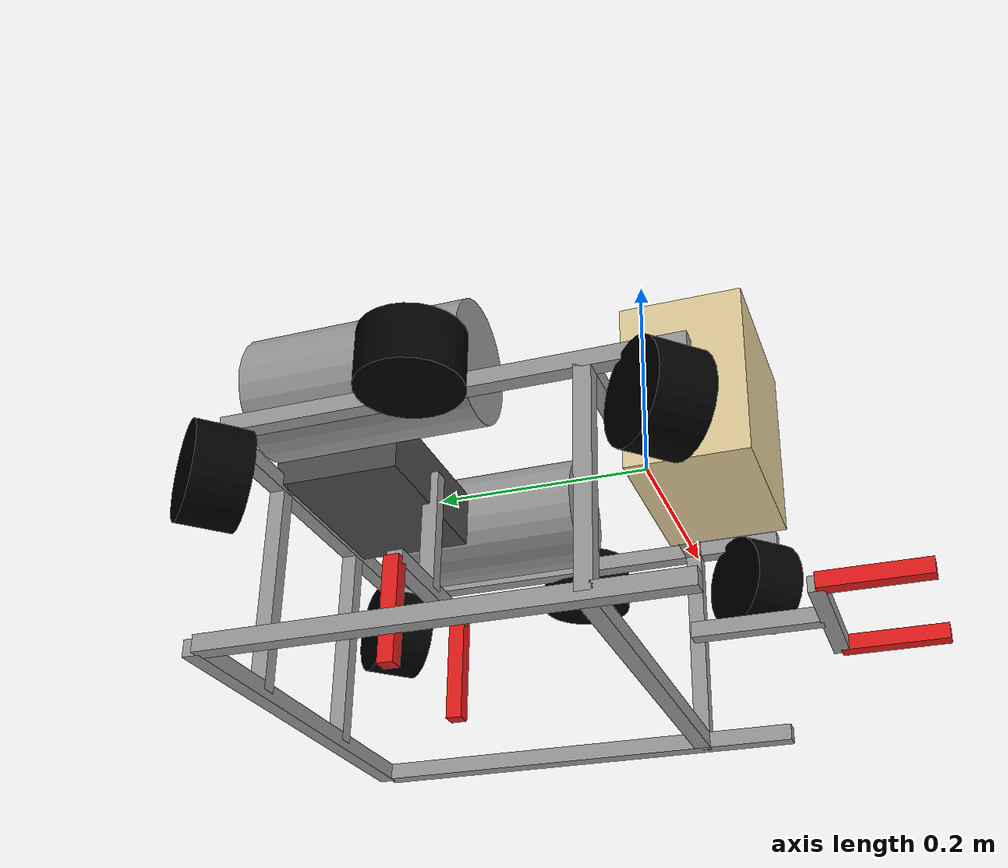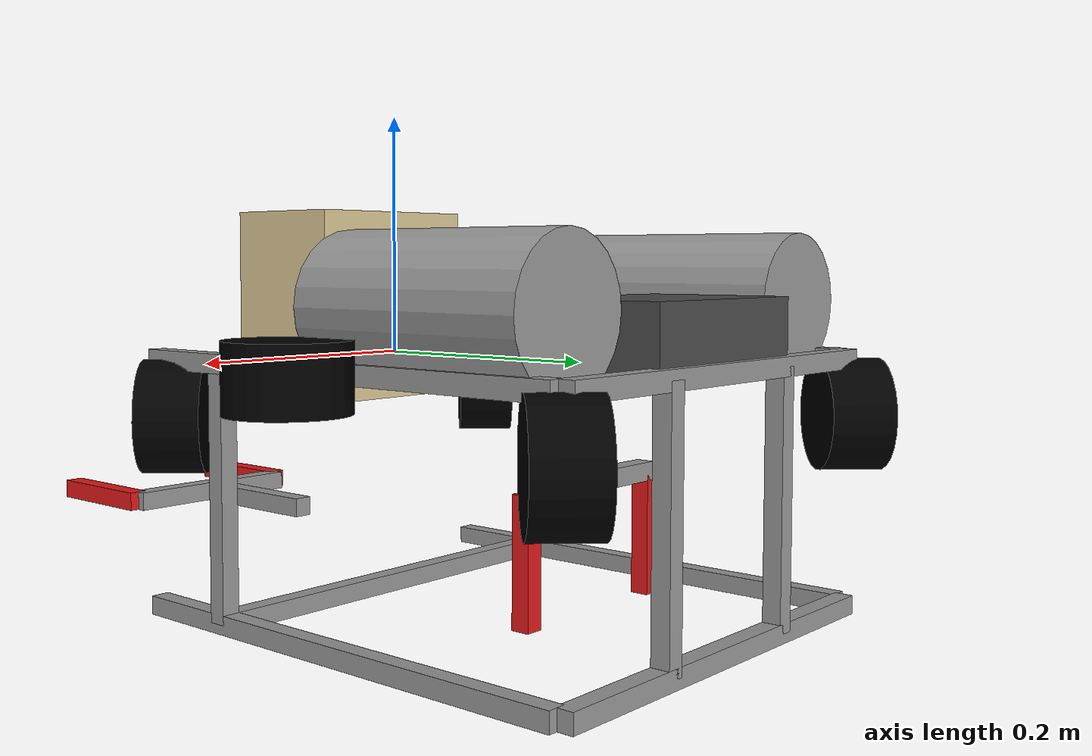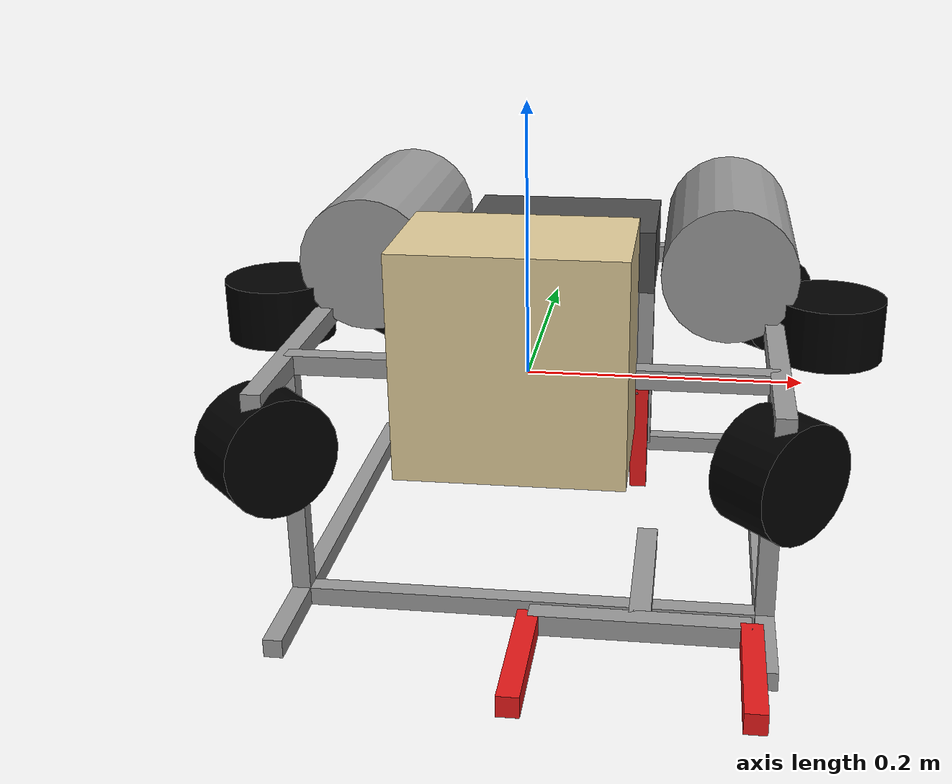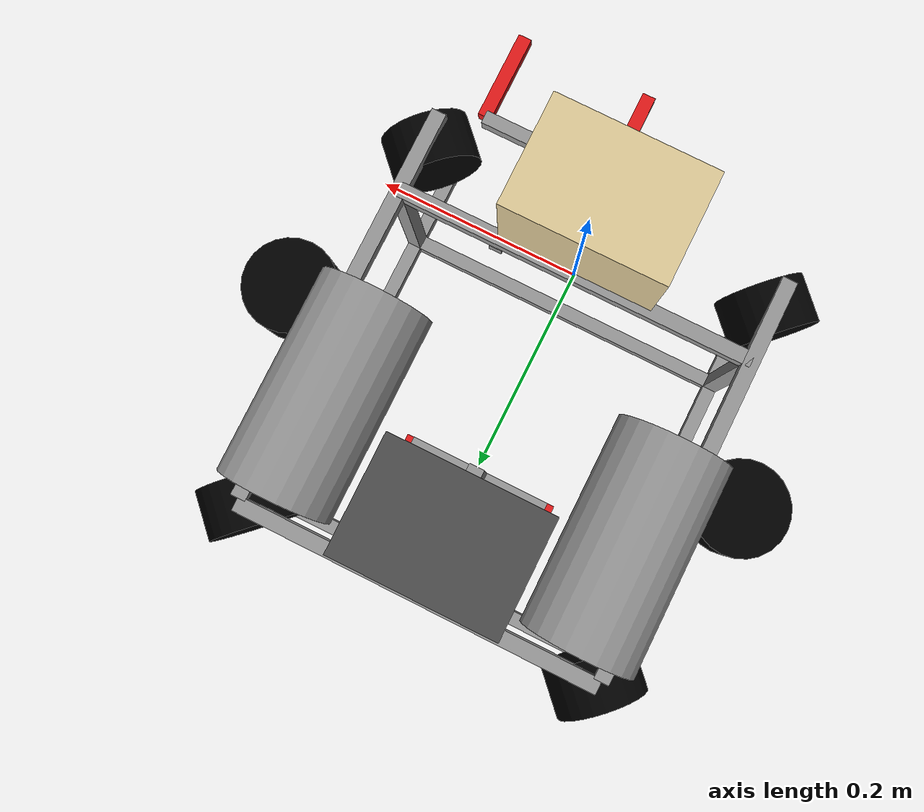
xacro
<?xml version="1.0"?>
<robot xmlns:xacro="http://www.ros.org/wiki/xacro" name="rov">

<!-- This is an .xacro file - that means it gets turned into a .urdf file
     after a couple of commands. It's used to simulate the ROV with ROS. -->

  <!-- Some macros for making inertia definition easier-->
  <xacro:include filename="inertial_macros.xacro"/>

  <!-- Xacro Properties Definition -->

  <!-- The following two properties are the
       dimensions of the 15x15mm frame-->
  <xacro:property name="width" value = "0.37" />
  <xacro:property name="depth" value = "0.41" />
  <xacro:property name="height" value = "0.20" />
  <xacro:property name="extrusion_width" value = "0.015" />

  <!-- Materials definition -->
  <material name="silver">
    <color rgba="0.6 0.6 0.6 1"/>
  </material>
  <material name="dark_gray">
    <color rgba="0.3 0.3 0.3 1"/>
  </material>
  <material name="white">
    <color rgba="1 1 1 1"/>
  </material>
  <material name="black">
    <color rgba="0 0 0 1"/>
  </material>
  <material name="beige">
    <color rgba="0.88 0.8 0.6 1"/>
  </material>
  <material name="red">
    <color rgba="0.9 0.1 0.1 1"/>
  </material>

  <!-- Base Link and Axis -->
  <link name="base_link">
  </link>

  <!-- Upper Frame Definition -->

  <link name="MEH_Crossbar">
    <visual>
      <geometry>
        <box size="${width} ${extrusion_width} ${extrusion_width}"/>
      </geometry>
      <material name="silver"/>
    </visual>
    <collision>
      <geometry>
        <box size="${width} ${extrusion_width} ${extrusion_width}"/>
      </geometry>
    </collision>
    <xacro:inertial_box mass="${width * 0.34}" x="${width}" y="${extrusion_width}" z="${extrusion_width}">
      <origin xyz="0 0 0" rpy="0 0 0"/>
    </xacro:inertial_box>
  </link>

  <joint name="Base_Link_MEH_Crossbar" type="fixed">
    <parent link="base_link"/>
    <child link="MEH_Crossbar"/>
  </joint>

  <link name="Upper_Left_Crossbar">
    <visual>
      <geometry>
        <box size="${extrusion_width} ${depth} ${extrusion_width}"/>
      </geometry>
      <material name="silver"/>
      <origin rpy="0 0 0" xyz="0 0.12 0"/>
    </visual>
    <collision>
      <geometry>
        <box size="${extrusion_width} ${depth} ${extrusion_width}"/>
      </geometry>
      <origin rpy="0 0 0" xyz="0 0.12 0"/>
    </collision>
    <xacro:inertial_box mass="${depth * 0.34}" x="${extrusion_width}" y="${depth}" z="${extrusion_width}">
      <origin xyz="0 0.12 0" rpy="0 0 0"/>
    </xacro:inertial_box>
  </link>

  <joint name="MEH_Crossbar_UL_Crossbar" type="fixed">
    <parent link="MEH_Crossbar"/>
    <child link="Upper_Left_Crossbar"/>
    <origin xyz="${-width / 2} 0 0"/>
  </joint>

  <link name="Upper_Right_Crossbar">
    <visual>
      <geometry>
        <box size="${extrusion_width} ${depth} ${extrusion_width}"/>
      </geometry>
      <material name="silver"/>
      <origin rpy="0 0 0" xyz="0 0.12 0"/>
    </visual>
    <collision>
      <geometry>
        <box size="${extrusion_width} ${depth} ${extrusion_width}"/>
      </geometry>
      <origin rpy="0 0 0" xyz="0 0.12 0"/>
    </collision>
    <xacro:inertial_box mass="${depth * 0.34}" x="${extrusion_width}" y="${depth}" z="${extrusion_width}">
      <origin xyz="0 0.12 0" rpy="0 0 0"/>
    </xacro:inertial_box>
  </link>

  <joint name="MEH_Crossbar_UR_Crossbar" type="fixed">
    <parent link="MEH_Crossbar"/>
    <child link="Upper_Right_Crossbar"/>
    <origin xyz="${width / 2} 0 0"/>
  </joint>

  <link name="Upper_Back_Crossbar">
    <visual>
      <geometry>
        <box size="${width} ${extrusion_width} ${extrusion_width}"/>
      </geometry>
      <material name="silver"/>
      <origin xyz="${width / 2} 0 0"/>
    </visual>
    <collision>
      <geometry>
        <box size="${width} ${extrusion_width} ${extrusion_width}"/>
      </geometry>
      <material name="silver"/>
      <origin xyz="${width / 2} 0 0"/>
    </collision>
    <xacro:inertial_box mass="${width*0.34}" x="${width}" y="${extrusion_width}" z="${extrusion_width}">
      <origin xyz="${width / 2} 0 0"/>
    </xacro:inertial_box>
  </link>

  <joint name="UB_Crossbar_UL_Crossbar" type="fixed">
    <parent link="Upper_Left_Crossbar"/>
    <child link="Upper_Back_Crossbar"/>
    <origin xyz="0 ${depth - 0.08} 0"/>
  </joint>

  <!-- Vertical Frame Definition -->

  <!-- Macros to quickly bang out the vertical posts-->
  <xacro:macro name="frame_post">
    <visual>
      <geometry>
        <box size="${extrusion_width} ${extrusion_width} ${height}"/>
      </geometry>
      <material name="silver"/>
      <origin xyz="0 0 -${height / 2}"/>
    </visual>
    <collision>
      <geometry>
        <box size="${extrusion_width} ${extrusion_width} ${height}"/>
      </geometry>
      <material name="silver"/>
      <origin xyz="0 0 -${height / 2}"/>
    </collision>
    <xacro:inertial_box mass="${height * 0.34}" x="${extrusion_width}" y="${extrusion_width}" z="${height}">
      <origin xyz="0 0 -${height / 2}"/>
    </xacro:inertial_box>
  </xacro:macro>

  <link name="Left_Post">
    <xacro:frame_post/>
  </link>

  <joint name="UL_Crossbar_Left_Post" type="fixed">
    <parent link="Upper_Left_Crossbar"/>
    <child link="Left_Post"/>
  </joint>

  <link name="Right_Post">
    <xacro:frame_post/>
  </link>

  <joint name="UR_Crossbar_Right_Post" type="fixed">
    <parent link="Upper_Right_Crossbar"/>
    <child link="Right_Post"/>
  </joint>

  <link name="Back_Left_Post">
    <xacro:frame_post/>
  </link>

  <joint name="UL_Crossbar_BL_Post" type="fixed">
    <parent link="Upper_Back_Crossbar"/>
    <child link="Back_Left_Post"/>
    <origin xyz="${width * 0.3} 0 0"/>
  </joint>

  <link name="Back_Right_Post">
    <xacro:frame_post/>
  </link>

  <joint name="UR_Crossbar_BR_Post" type="fixed">
    <parent link="Upper_Back_Crossbar"/>
    <child link="Back_Right_Post"/>
    <origin xyz="${width * 0.7} 0 0"/>
  </joint>

  <!-- Lower Frame Definition -->

  <link name="Lower_Front_Crossbar">
    <visual>
      <geometry>
        <box size="${width} ${extrusion_width} ${extrusion_width}"/>
      </geometry>
      <material name="silver"/>
      <origin xyz="${width / 2} 0 0"/>
    </visual>
    <collision>
      <geometry>
        <box size="${width} ${extrusion_width} ${extrusion_width}"/>
      </geometry>
      <material name="silver"/>
      <origin xyz="${width / 2} 0 0"/>
    </collision>
    <xacro:inertial_box mass="${width * 0.34}" x="${width}" y="${extrusion_width}" z="${extrusion_width}">
      <origin xyz="${width / 2} 0 0"/>
    </xacro:inertial_box>
  </link>

  <joint name="LF_Crossbar_Left_Post" type="fixed">
    <parent link="Left_Post"/>
    <child link="Lower_Front_Crossbar"/>
    <origin xyz="0 0 -${height}"/>
  </joint>

  <link name="Lower_Left_Crossbar">
    <visual>
      <geometry>
        <box size="${extrusion_width} ${depth} ${extrusion_width}"/>
      </geometry>
      <material name="silver"/>
      <origin rpy="0 0 0" xyz="0 0.12 0"/>
    </visual>
    <collision>
      <geometry>
        <box size="${extrusion_width} ${depth} ${extrusion_width}"/>
      </geometry>
      <origin rpy="0 0 0" xyz="0 0.12 0"/>
    </collision>
    <xacro:inertial_box mass="${depth*0.34}" x="${extrusion_width}" y="${depth}" z="${extrusion_width}">
      <origin xyz="0 0.12 0" rpy="0 0 0"/>
    </xacro:inertial_box>
  </link>

  <joint name="LF_Crossbar_LL_Crossbar" type="fixed">
    <parent link="Lower_Front_Crossbar"/>
    <child link="Lower_Left_Crossbar"/>
    <origin xyz="0 0 0"/>
  </joint>

  <link name="Lower_Right_Crossbar">
    <visual>
      <geometry>
        <box size="${extrusion_width} ${depth} ${extrusion_width}"/>
      </geometry>
      <material name="silver"/>
      <origin rpy="0 0 0" xyz="0 0.12 0"/>
    </visual>
    <collision>
      <geometry>
        <box size="${extrusion_width} ${depth} ${extrusion_width}"/>
      </geometry>
      <origin rpy="0 0 0" xyz="0 0.12 0"/>
    </collision>
    <xacro:inertial_box mass="${depth*0.34}" x="${extrusion_width}" y="${depth}" z="${extrusion_width}">
      <origin xyz="0 0.12 0" rpy="0 0 0"/>
    </xacro:inertial_box>
  </link>

  <joint name="LF_Crossbar_LR_Crossbar" type="fixed">
    <parent link="Lower_Front_Crossbar"/>
    <child link="Lower_Right_Crossbar"/>
    <origin xyz="${width} 0 0"/>
  </joint>

  <link name="Lower_Back_Crossbar">
    <visual>
      <geometry>
        <box size="${width} ${extrusion_width} ${extrusion_width}"/>
      </geometry>
      <material name="silver"/>
      <origin xyz="${width / 2} 0 0"/>
    </visual>
    <collision>
      <geometry>
        <box size="${width} ${extrusion_width} ${extrusion_width}"/>
      </geometry>
      <origin xyz="${width / 2} 0 0"/>
    </collision>
    <xacro:inertial_box mass="${width*0.34}" x="${width}" y="${extrusion_width}" z="${extrusion_width}">
      <origin xyz="${width / 2} 0 0"/>
    </xacro:inertial_box>
  </link>

  <joint name="LB_Crossbar_LL_Crossbar" type="fixed">
    <parent link="Lower_Left_Crossbar"/>
    <child link="Lower_Back_Crossbar"/>
    <origin xyz="0 ${depth - 0.08} 0"/>
  </joint>

  <!-- Housings and Static Buoyancy -->

  <link name="MEH">
    <visual>
      <geometry>
        <box size="0.16 0.11 0.16"/>
      </geometry>
      <origin xyz="0 -0.055 0.04"/>
      <material name="beige"/>
    </visual>
    <collision>
      <geometry>
        <box size="0.16 0.11 0.16"/>
      </geometry>
      <origin xyz="0 -0.055 0.04"/>
    </collision>
    <xacro:inertial_box mass="0.8" x="0.16" y="0.11" z="0.16">
      <origin xyz="0 -0.055 0.04" rpy="0 0 0"/>
    </xacro:inertial_box>
  </link>

  <joint name="MEH_Crossbar_to_MEH" type="fixed">
    <parent link="MEH_Crossbar"/>
    <child link="MEH"/>
  </joint>

  <link name="PSE">
    <visual>
      <geometry>
        <box size="0.17 0.12 0.055"/>
      </geometry>
      <material name="dark_gray"/>
      <origin xyz="0 -0.06 0.024"/>
    </visual>
    <collision>
      <geometry>
        <box size="0.17 0.12 0.055"/>
      </geometry>
      <origin xyz="0 -0.06 0.024"/>
    </collision>
    <xacro:inertial_box mass="1" x="0.17" y="0.12" z="0.055">
      <origin xyz="0 -0.06 0.024" rpy="0 0 0"/>
    </xacro:inertial_box>
  </link>

  <joint name="UB_Crossbar_PSE" type="fixed">
    <parent link="Upper_Back_Crossbar"/>
    <child link="PSE"/>
    <origin xyz="${width / 2} 0 0"/>
  </joint>

  <link name="SB_Left">
    <visual>
      <geometry>
        <cylinder length="0.2" radius="0.055"/>
      </geometry>
      <material name="silver"/>
      <origin xyz="0 -0.045 -0.125"/>
    </visual>
    <collision>
      <geometry>
        <cylinder length="0.2" radius="0.055"/>
      </geometry>
      <origin xyz="0 -0.045 -0.125"/>
    </collision>
    <xacro:inertial_cylinder mass="0.3" length="0.2" radius="0.055">
      <origin rpy="0 0 0" xyz="0 -0.045 -0.125"/>
    </xacro:inertial_cylinder>
  </link>

  <joint name="UB_Crossbar_SB_Left" type="fixed">
    <parent link="Upper_Back_Crossbar"/>
    <child link="SB_Left"/>
    <origin rpy="4.71 0 0" xyz="${width * 0.1} 0 0"/>
  </joint>

  <link name="SB_Right">
    <visual>
      <geometry>
        <cylinder length="0.2" radius="0.055"/>
      </geometry>
      <material name="silver"/>
      <origin xyz="0 -0.045 -0.125"/>
    </visual>
    <collision>
      <geometry>
        <cylinder length="0.2" radius="0.055"/>
      </geometry>
      <material name="silver"/>
      <origin xyz="0 -0.045 -0.125"/>
    </collision>
    <xacro:inertial_cylinder mass="0.3" length="0.2" radius="0.055">
      <origin rpy="0 0 0" xyz="0 -0.045 -0.125"/>
    </xacro:inertial_cylinder>
  </link>

  <joint name="UB_Crossbar_SB_Right" type="fixed">
    <parent link="Upper_Back_Crossbar"/>
    <child link="SB_Right"/>
    <origin rpy="4.71 0 0" xyz="${width * 0.9} 0 0"/>
  </joint>

  <!-- Thrusters -->

  <!-- Macros to quickly bang out the identical thrusters-->
  <xacro:macro name="horizontal_thruster">
    <visual>
      <geometry>
        <cylinder length="0.05" radius="0.045"/>
      </geometry>
      <material name="black"/>
      <origin rpy="1.57 0 0.77" xyz="0 0 -0.045"/>
    </visual>
    <collision>
      <geometry>
        <cylinder length="0.05" radius="0.045"/>
      </geometry>
      <material name="black"/>
      <origin rpy="1.57 0 0.77" xyz="0 0 -0.045"/>
    </collision>
    <xacro:inertial_cylinder mass="0.3" length="0.05" radius="0.045">
      <origin rpy="1.57 0 0.77" xyz="0 0 -0.045"/>
    </xacro:inertial_cylinder>
  </xacro:macro>

  <link name="Thruster_Front_Left">
    <xacro:horizontal_thruster/>
  </link>

  <joint name="UL_Crossbar_TFL" type="fixed">
    <parent link="Upper_Left_Crossbar"/>
    <child link="Thruster_Front_Left"/>
    <origin xyz="0 -0.06 0"/>
  </joint>

  <link name="Thruster_Back_Left">
    <xacro:horizontal_thruster/>
  </link>

  <joint name="UL_Crossbar_TBL" type="fixed">
    <parent link="Upper_Left_Crossbar"/>
    <child link="Thruster_Back_Left"/>
    <origin xyz="0 ${depth - 0.08} 0"/>
  </joint>

  <link name="Thruster_Front_Right">
    <xacro:horizontal_thruster/>
  </link>

  <joint name="UR_Crossbar_TFR" type="fixed">
    <parent link="Upper_Right_Crossbar"/>
    <child link="Thruster_Front_Right"/>
    <origin xyz="0 -0.06 0"/>
  </joint>

  <link name="Thruster_Back_Right">
    <xacro:horizontal_thruster/>
  </link>

  <joint name="UR_Crossbar_TBR" type="fixed">
    <parent link="Upper_Right_Crossbar"/>
    <child link="Thruster_Back_Right"/>
    <origin xyz="0 ${depth - 0.08} 0"/>
  </joint>

  <link name="Thruster_Vert_Left">
    <visual>
      <geometry>
        <cylinder length="0.05" radius="0.045"/>
      </geometry>
      <material name="black"/>
      <origin rpy="0 0 0" xyz="-0.045 0 0"/>
    </visual>
    <collision>
      <geometry>
        <cylinder length="0.05" radius="0.045"/>
      </geometry>
      <origin rpy="0 0 0" xyz="-0.045 0 0"/>
    </collision>
    <xacro:inertial_cylinder mass="0.3" length="0.05" radius="0.045">
      <origin rpy="0 0 0" xyz="-0.045 0 0"/>
    </xacro:inertial_cylinder>
  </link>

  <joint name="UL_Crossbar_TVL" type="fixed">
    <parent link="Upper_Left_Crossbar"/>
    <child link="Thruster_Vert_Left"/>
    <origin xyz="0 0.13 0"/>
  </joint>

  <link name="Thruster_Vert_Right">
    <visual>
      <geometry>
        <cylinder length="0.05" radius="0.045"/>
      </geometry>
      <material name="black"/>
      <origin rpy="0 0 0" xyz="0.045 0 0"/>
    </visual>
    <collision>
      <geometry>
        <cylinder length="0.05" radius="0.045"/>
      </geometry>
      <origin rpy="0 0 0" xyz="0.045 0 0"/>
    </collision>
    <xacro:inertial_cylinder mass="0.3" length="0.05" radius="0.045">
      <origin rpy="0 0 0" xyz="0.045 0 0"/>
    </xacro:inertial_cylinder>
  </link>

  <joint name="UL_Crossbar_TVR" type="fixed">
    <parent link="Upper_Right_Crossbar"/>
    <child link="Thruster_Vert_Right"/>
    <origin xyz="0 0.13 0"/>
  </joint>

  <!-- Grippers -->

  <link name="HGripper_Post">
    <visual>
      <geometry>
        <box size="${extrusion_width} 0.12 ${extrusion_width}"/>
      </geometry>
      <material name="silver"/>
      <origin xyz="0 -0.075 -0.125"/>
    </visual>
    <collision>
      <geometry>
        <box size="${extrusion_width} 0.12 ${extrusion_width}"/>
      </geometry>
      <material name="silver"/>
      <origin rpy="0 0 0" xyz="0 -0.075 -0.125"/>
    </collision>
    <xacro:inertial_box mass="${0.12 * 0.34}" x="${extrusion_width}" y="0.12" z="${extrusion_width}">
      <origin rpy="0 0 0" xyz="0 -0.075 -0.125"/>
    </xacro:inertial_box>
  </link>

  <joint name="MEH_Crossbar_HGripper_Post" type="fixed">
    <parent link="MEH_Crossbar"/>
    <child link="HGripper_Post"/>
    <origin xyz="${width * 0.25} 0 0"/>
  </joint>

  <link name="HGripper_Crossbar">
    <visual>
      <geometry>
        <box size="0.15 ${extrusion_width} ${extrusion_width}"/>
      </geometry>
      <material name="silver"/>
    </visual>
    <collision>
      <geometry>
        <box size="0.15 ${extrusion_width} ${extrusion_width}"/>
      </geometry>
    </collision>
    <xacro:inertial_box mass="${0.15 * 0.34}" x="0.15" y="${extrusion_width}" z="${extrusion_width}">
      <origin rpy="0 0 0" xyz="0 0 0"/>
    </xacro:inertial_box>
  </link>

  <joint name="HGripper_Post_HGripper_Crossbar" type="fixed">
    <parent link="HGripper_Post"/>
    <child link="HGripper_Crossbar"/>
    <origin xyz="0 -0.14 -0.125"/>
  </joint>

  <link name="HGripper_Finger_Static">
    <visual>
      <geometry>
        <box size="${extrusion_width} 0.1 ${extrusion_width}"/>
      </geometry>
      <material name="red"/>
      <origin xyz="0 -0.05 0"/>
    </visual>
    <collision>
      <geometry>
        <box size="${extrusion_width} 0.1 ${extrusion_width}"/>
      </geometry>
      <origin xyz="0 -0.05 0"/>
    </collision>
    <xacro:inertial_box mass="${0.1 * 0.34}" x="${extrusion_width}" y="0.1" z="${extrusion_width}">
      <origin rpy="0 0 0" xyz="0 -0.05 0"/>
    </xacro:inertial_box>
  </link>

  <joint name="HGripper_Crossbar_HGF_Static" type="fixed">
    <parent link="HGripper_Crossbar"/>
    <child link="HGripper_Finger_Static"/>
    <origin xyz="-0.075 0 0"/>
  </joint>

  <link name="HGripper_Finger_Mobile">
    <visual>
      <geometry>
        <box size="${extrusion_width} 0.1 ${extrusion_width}"/>
      </geometry>
      <material name="red"/>
      <origin xyz="0 -0.05 0"/>
    </visual>
    <collision>
      <geometry>
        <box size="${extrusion_width} 0.1 ${extrusion_width}"/>
      </geometry>
      <origin xyz="0 -0.05 0"/>
    </collision>
    <xacro:inertial_box mass="${0.1 * 0.34}" x="${extrusion_width}" y="0.1" z="${extrusion_width}">
      <origin rpy="0 0 0" xyz="0 -0.05 0"/>
    </xacro:inertial_box>
  </link>

  <joint name="Front_Gripper" type="prismatic">
    <parent link="HGripper_Crossbar"/>
    <child link="HGripper_Finger_Mobile"/>
    <origin xyz="0.075 0 0"/>
    <limit effort="1000.0" lower="-0.15" upper="0" velocity="0.5"/>
  </joint>

  <link name="VGripper_Post">
    <visual>
      <geometry>
        <box size="${extrusion_width} ${extrusion_width} 0.12"/>
      </geometry>
      <material name="silver"/>
      <origin rpy="0 0 0" xyz="0 0 -0.06"/>
    </visual>
    <collision>
      <geometry>
        <box size="${extrusion_width} ${extrusion_width} 0.12"/>
      </geometry>
      <material name="silver"/>
      <origin rpy="0 0 0" xyz="0 0 -0.06"/>
    </collision>
    <xacro:inertial_box mass="${0.1 * 0.34}" x="${extrusion_width}" y="${extrusion_width}" z="0.12">
      <origin rpy="0 0 0" xyz="0 0 -0.06"/>
    </xacro:inertial_box>
  </link>

  <joint name="PSE_VGripper_Post" type="fixed">
    <parent link="PSE"/>
    <child link="VGripper_Post"/>
    <origin xyz="0 -0.12 0.03"/>
  </joint>

  <link name="VGripper_Crossbar">
    <visual>
      <geometry>
        <box size="0.15 ${extrusion_width} ${extrusion_width}"/>
      </geometry>
      <material name="silver"/>
    </visual>
    <collision>
      <geometry>
        <box size="0.15 ${extrusion_width} ${extrusion_width}"/>
      </geometry>
      <material name="silver"/>
    </collision>
    <xacro:inertial_box mass="${0.15 * 0.34}" x="0.15" y="${extrusion_width}" z="${extrusion_width}">
      <origin rpy="0 0 0" xyz="0 0 0"/>
    </xacro:inertial_box>
  </link>

  <joint name="VGripper_Post_VGripper_Crossbar" type="fixed">
    <parent link="VGripper_Post"/>
    <child link="VGripper_Crossbar"/>
    <origin xyz="0 0 -0.12"/>
  </joint>

  <link name="VGripper_Finger_Static">
    <visual>
      <geometry>
        <box size="${extrusion_width} ${extrusion_width} 0.1"/>
      </geometry>
      <material name="red"/>
      <origin xyz="0 0 -0.05"/>
    </visual>
    <collision>
      <geometry>
        <box size="${extrusion_width} ${extrusion_width} 0.1"/>
      </geometry>
      <material name="red"/>
      <origin xyz="0 0 -0.05"/>
    </collision>
    <xacro:inertial_box mass="${0.1 * 0.34}" x="${extrusion_width}" y="${extrusion_width}" z="0.1">
      <origin rpy="0 0 0" xyz="0 0 -0.05"/>
    </xacro:inertial_box>
  </link>

  <joint name="VGripper_Crossbar_VGF_Static" type="fixed">
    <parent link="VGripper_Crossbar"/>
    <child link="VGripper_Finger_Static"/>
    <origin xyz="-0.075 0 0"/>
  </joint>

  <link name="VGripper_Finger_Mobile">
    <visual>
      <geometry>
        <box size="${extrusion_width} ${extrusion_width} 0.1"/>
      </geometry>
      <material name="red"/>
      <origin xyz="0 0 -0.05"/>
    </visual>
    <collision>
      <geometry>
        <box size="${extrusion_width} ${extrusion_width} 0.1"/>
      </geometry>
      <material name="red"/>
      <origin xyz="0 0 -0.05"/>
    </collision>
    <xacro:inertial_box mass="${0.1 * 0.34}" x="${extrusion_width}" y="${extrusion_width}" z="0.1">
      <origin rpy="0 0 0" xyz="0 0 -0.05"/>
    </xacro:inertial_box>
  </link>

  <joint name="Bottom_Gripper" type="prismatic">
    <parent link="VGripper_Crossbar"/>
    <child link="VGripper_Finger_Mobile"/>
    <origin xyz="0.075 0 0"/>
    <limit effort="1000.0" lower="-0.15" upper="0" velocity="0.5"/>
  </joint>

</robot>
